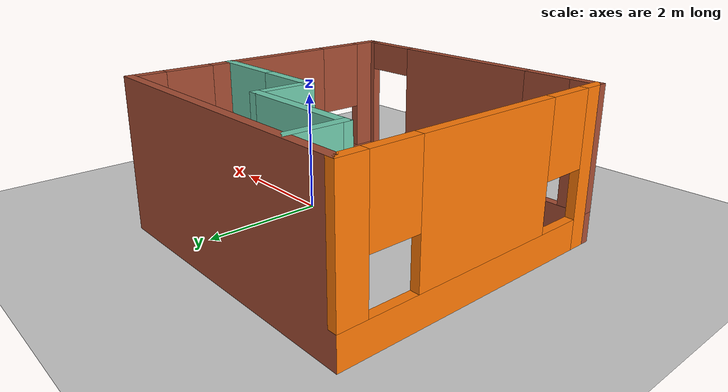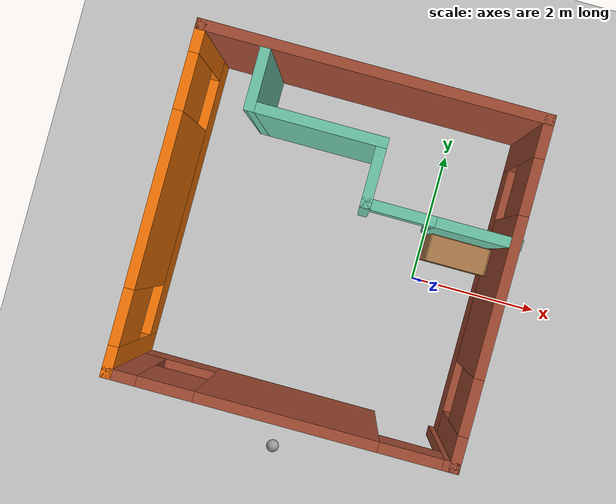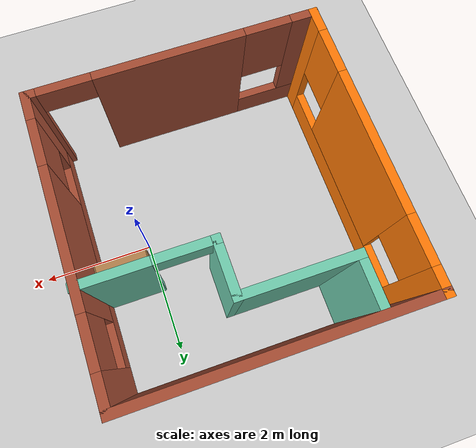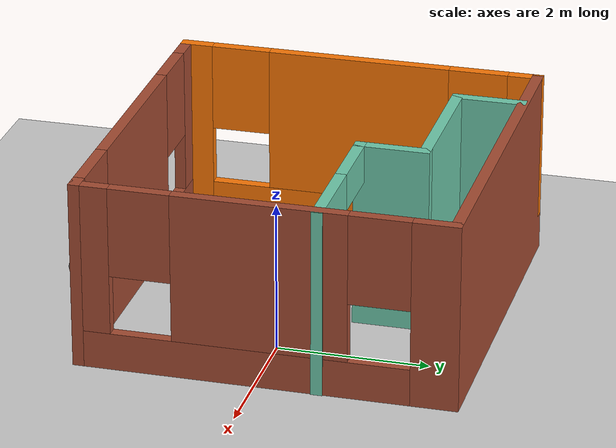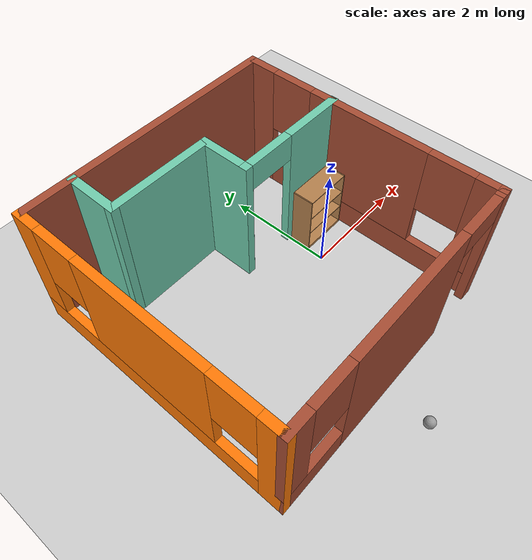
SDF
<sdf version="1.6">
 <world name="default">
  <light name="sun" type="directional">
   <pose>0 0 10 0 -0 0</pose>
   <diffuse>0.8 0.8 0.8 1</diffuse>
   <specular>0.2 0.2 0.2 1</specular>
   <attenuation>
    <range>1000</range>
    <constant>0.9</constant>
    <linear>0.01</linear>
    <quadratic>0.001</quadratic>
   </attenuation>
   <direction>-0.5 0.1 -0.9</direction>
  </light>
  <model name="ground_plane">
   <static>1</static>
   <link name="link">
    <collision name="collision">
     <geometry><plane><normal>0 0 1</normal><size>100 100</size></plane></geometry>
     <surface><friction><ode><mu>100</mu><mu2>50</mu2></ode></friction></surface>
    </collision>
    <visual name="visual">
     <cast_shadows>0</cast_shadows>
     <geometry><plane><normal>0 0 1</normal><size>100 100</size></plane></geometry>
     <material>
      <script><uri>file://media/materials/scripts/gazebo.material</uri><name>Gazebo/Grey</name></script>
     </material>
    </visual>
   </link>
  </model>
  <gravity>0 0 -9.8</gravity>
  <magnetic_field>6e-06 2.3e-05 -4.2e-05</magnetic_field>
  <atmosphere type="adiabatic"/>
  <physics name="default_physics" default="0" type="ode">
   <max_step_size>0.001</max_step_size>
   <real_time_factor>1</real_time_factor>
   <real_time_update_rate>1000</real_time_update_rate>
  </physics>
  <scene><ambient>0.4 0.4 0.4 1</ambient><background>0.7 0.7 0.7 1</background><shadows>1</shadows></scene>
  <spherical_coordinates>
   <surface_model>EARTH_WGS84</surface_model>
   <latitude_deg>0</latitude_deg>
   <longitude_deg>0</longitude_deg>
   <elevation>0</elevation>
   <heading_deg>0</heading_deg>
  </spherical_coordinates>
  <model name="smallBuilding">
   <pose>-1.37712 0.125 0 0 -0 0</pose>
   <link name="Wall_0">
    <pose>-2.43288 0 0 0 -0 1.5708</pose>
    <visual name="Wall_0_Visual_0">
     <pose>-2.27603 0 1.25 0 -0 0</pose>
     <geometry><box><size>0.447946 0.15 2.5</size></box></geometry>
     <material>
      <script><uri>file://media/materials/scripts/gazebo.material</uri><name>Gazebo/Grey</name></script>
      <ambient>0.996078 0.47451 0.0196078 1</ambient>
     </material>
     <meta><layer>0</layer></meta>
    </visual>
    <collision name="Wall_0_Collision_0">
     <geometry><box><size>0.447946 0.15 2.5</size></box></geometry>
     <pose>-2.27603 0 1.25 0 -0 0</pose>
    </collision>
    <visual name="Wall_0_Visual_1">
     <pose>0.223973 0 0.25 0 -0 0</pose>
     <geometry><box><size>4.55205 0.15 0.5</size></box></geometry>
     <material>
      <script><uri>file://media/materials/scripts/gazebo.material</uri><name>Gazebo/Grey</name></script>
      <ambient>0.996078 0.47451 0.0196078 1</ambient>
     </material>
     <meta><layer>0</layer></meta>
    </visual>
    <collision name="Wall_0_Collision_1">
     <geometry><box><size>4.55205 0.15 0.5</size></box></geometry>
     <pose>0.223973 0 0.25 0 -0 0</pose>
    </collision>
    <visual name="Wall_0_Visual_2">
     <pose>-0.009509 0 1.5 0 -0 0</pose>
     <geometry><box><size>2.48509 0.15 2</size></box></geometry>
     <material>
      <script><uri>file://media/materials/scripts/gazebo.material</uri><name>Gazebo/Grey</name></script>
      <ambient>0.996078 0.47451 0.0196078 1</ambient>
     </material>
     <meta><layer>0</layer></meta>
    </visual>
    <collision name="Wall_0_Collision_2">
     <geometry><box><size>2.48509 0.15 2</size></box></geometry>
     <pose>-0.009509 0 1.5 0 -0 0</pose>
    </collision>
    <visual name="Wall_0_Visual_3">
     <pose>2.26652 0 1.5 0 -0 0</pose>
     <geometry><box><size>0.466964 0.15 2</size></box></geometry>
     <material>
      <script><uri>file://media/materials/scripts/gazebo.material</uri><name>Gazebo/Grey</name></script>
      <ambient>0.996078 0.47451 0.0196078 1</ambient>
     </material>
     <meta><layer>0</layer></meta>
    </visual>
    <collision name="Wall_0_Collision_3">
     <geometry><box><size>0.466964 0.15 2</size></box></geometry>
     <pose>2.26652 0 1.5 0 -0 0</pose>
    </collision>
    <visual name="Wall_0_Visual_4">
     <pose>-1.65205 0 1.9 0 -0 0</pose>
     <geometry><box><size>0.8 0.15 1.2</size></box></geometry>
     <material>
      <script><uri>file://media/materials/scripts/gazebo.material</uri><name>Gazebo/Grey</name></script>
      <ambient>0.996078 0.47451 0.0196078 1</ambient>
     </material>
     <meta><layer>0</layer></meta>
    </visual>
    <collision name="Wall_0_Collision_4">
     <geometry><box><size>0.8 0.15 1.2</size></box></geometry>
     <pose>-1.65205 0 1.9 0 -0 0</pose>
    </collision>
    <visual name="Wall_0_Visual_5">
     <pose>1.63304 0 1.9 0 -0 0</pose>
     <geometry><box><size>0.8 0.15 1.2</size></box></geometry>
     <material>
      <script><uri>file://media/materials/scripts/gazebo.material</uri><name>Gazebo/Grey</name></script>
      <ambient>0.996078 0.47451 0.0196078 1</ambient>
     </material>
     <meta><layer>0</layer></meta>
    </visual>
    <collision name="Wall_0_Collision_5">
     <geometry><box><size>0.8 0.15 1.2</size></box></geometry>
     <pose>1.63304 0 1.9 0 -0 0</pose>
    </collision>
   </link>
   <link name="Wall_1">
    <collision name="Wall_1_Collision">
     <geometry><box><size>5 0.15 2.5</size></box></geometry>
     <pose>0 0 1.25 0 -0 0</pose>
    </collision>
    <visual name="Wall_1_Visual">
     <pose>0 0 1.25 0 -0 0</pose>
     <geometry><box><size>5 0.15 2.5</size></box></geometry>
     <material>
      <script><uri>file://media/materials/scripts/gazebo.material</uri><name>Gazebo/Bricks</name></script>
      <ambient>0.996078 0.47451 0.0196078 1</ambient>
     </material>
     <meta><layer>0</layer></meta>
    </visual>
    <pose>-0.007876 2.425 0 0 -0 0</pose>
   </link>
   <link name="Wall_2">
    <pose>2.41712 0 0 0 0 -1.5708</pose>
    <visual name="Wall_2_Visual_0">
     <pose>-2.19047 0 1.25 0 -0 0</pose>
     <geometry><box><size>0.619051 0.15 2.5</size></box></geometry>
     <material>
      <script><uri>file://media/materials/scripts/gazebo.material</uri><name>Gazebo/Bricks</name></script>
      <ambient>0.996078 0.47451 0.0196078 1</ambient>
     </material>
     <meta><layer>0</layer></meta>
    </visual>
    <collision name="Wall_2_Collision_0">
     <geometry><box><size>0.619051 0.15 2.5</size></box></geometry>
     <pose>-2.19047 0 1.25 0 -0 0</pose>
    </collision>
    <visual name="Wall_2_Visual_1">
     <pose>0.309526 0 0.25 0 -0 0</pose>
     <geometry><box><size>4.38095 0.15 0.5</size></box></geometry>
     <material>
      <script><uri>file://media/materials/scripts/gazebo.material</uri><name>Gazebo/Bricks</name></script>
      <ambient>0.996078 0.47451 0.0196078 1</ambient>
     </material>
     <meta><layer>0</layer></meta>
    </visual>
    <collision name="Wall_2_Collision_1">
     <geometry><box><size>4.38095 0.15 0.5</size></box></geometry>
     <pose>0.309526 0 0.25 0 -0 0</pose>
    </collision>
    <visual name="Wall_2_Visual_2">
     <pose>0.055135 0 1.5 0 -0 0</pose>
     <geometry><box><size>2.27217 0.15 2</size></box></geometry>
     <material>
      <script><uri>file://media/materials/scripts/gazebo.material</uri><name>Gazebo/Bricks</name></script>
      <ambient>0.996078 0.47451 0.0196078 1</ambient>
     </material>
     <meta><layer>0</layer></meta>
    </visual>
    <collision name="Wall_2_Collision_2">
     <geometry><box><size>2.27217 0.15 2</size></box></geometry>
     <pose>0.055135 0 1.5 0 -0 0</pose>
    </collision>
    <visual name="Wall_2_Visual_3">
     <pose>2.24561 0 1.5 0 -0 0</pose>
     <geometry><box><size>0.508781 0.15 2</size></box></geometry>
     <material>
      <script><uri>file://media/materials/scripts/gazebo.material</uri><name>Gazebo/Bricks</name></script>
      <ambient>0.996078 0.47451 0.0196078 1</ambient>
     </material>
     <meta><layer>0</layer></meta>
    </visual>
    <collision name="Wall_2_Collision_3">
     <geometry><box><size>0.508781 0.15 2</size></box></geometry>
     <pose>2.24561 0 1.5 0 -0 0</pose>
    </collision>
    <visual name="Wall_2_Visual_4">
     <pose>-1.48095 0 1.9 0 -0 0</pose>
     <geometry><box><size>0.8 0.15 1.2</size></box></geometry>
     <material>
      <script><uri>file://media/materials/scripts/gazebo.material</uri><name>Gazebo/Bricks</name></script>
      <ambient>0.996078 0.47451 0.0196078 1</ambient>
     </material>
     <meta><layer>0</layer></meta>
    </visual>
    <collision name="Wall_2_Collision_4">
     <geometry><box><size>0.8 0.15 1.2</size></box></geometry>
     <pose>-1.48095 0 1.9 0 -0 0</pose>
    </collision>
    <visual name="Wall_2_Visual_5">
     <pose>1.59122 0 1.9 0 -0 0</pose>
     <geometry><box><size>0.8 0.15 1.2</size></box></geometry>
     <material>
      <script><uri>file://media/materials/scripts/gazebo.material</uri><name>Gazebo/Bricks</name></script>
      <ambient>0.996078 0.47451 0.0196078 1</ambient>
     </material>
     <meta><layer>0</layer></meta>
    </visual>
    <collision name="Wall_2_Collision_5">
     <geometry><box><size>0.8 0.15 1.2</size></box></geometry>
     <pose>1.59122 0 1.9 0 -0 0</pose>
    </collision>
   </link>
   <link name="Wall_3">
    <pose>-0.007876 -2.425 0 0 -0 3.14159</pose>
    <visual name="Wall_3_Visual_0">
     <pose>-2.37989 0 1.25 0 -0 0</pose>
     <geometry><box><size>0.240218 0.15 2.5</size></box></geometry>
     <material>
      <script><uri>file://media/materials/scripts/gazebo.material</uri><name>Gazebo/Bricks</name></script>
      <ambient>0.996078 0.47451 0.0196078 1</ambient>
     </material>
     <meta><layer>0</layer></meta>
    </visual>
    <collision name="Wall_3_Collision_0">
     <geometry><box><size>0.240218 0.15 2.5</size></box></geometry>
     <pose>-2.37989 0 1.25 0 -0 0</pose>
    </collision>
    <visual name="Wall_3_Visual_1">
     <pose>-0.073797 0 1.25 0 -0 0</pose>
     <geometry><box><size>2.57197 0.15 2.5</size></box></geometry>
     <material>
      <script><uri>file://media/materials/scripts/gazebo.material</uri><name>Gazebo/Bricks</name></script>
      <ambient>0.996078 0.47451 0.0196078 1</ambient>
     </material>
     <meta><layer>0</layer></meta>
    </visual>
    <collision name="Wall_3_Collision_1">
     <geometry><box><size>2.57197 0.15 2.5</size></box></geometry>
     <pose>-0.073797 0 1.25 0 -0 0</pose>
    </collision>
    <visual name="Wall_3_Visual_2">
     <pose>1.85609 0 0.25 0 -0 0</pose>
     <geometry><box><size>1.28781 0.15 0.5</size></box></geometry>
     <material>
      <script><uri>file://media/materials/scripts/gazebo.material</uri><name>Gazebo/Bricks</name></script>
      <ambient>0.996078 0.47451 0.0196078 1</ambient>
     </material>
     <meta><layer>0</layer></meta>
    </visual>
    <collision name="Wall_3_Collision_2">
     <geometry><box><size>1.28781 0.15 0.5</size></box></geometry>
     <pose>1.85609 0 0.25 0 -0 0</pose>
    </collision>
    <visual name="Wall_3_Visual_3">
     <pose>2.25609 0 1.5 0 -0 0</pose>
     <geometry><box><size>0.487813 0.15 2</size></box></geometry>
     <material>
      <script><uri>file://media/materials/scripts/gazebo.material</uri><name>Gazebo/Bricks</name></script>
      <ambient>0.996078 0.47451 0.0196078 1</ambient>
     </material>
     <meta><layer>0</layer></meta>
    </visual>
    <collision name="Wall_3_Collision_3">
     <geometry><box><size>0.487813 0.15 2</size></box></geometry>
     <pose>2.25609 0 1.5 0 -0 0</pose>
    </collision>
    <visual name="Wall_3_Visual_4">
     <pose>1.61219 0 1.9 0 -0 0</pose>
     <geometry><box><size>0.8 0.15 1.2</size></box></geometry>
     <material>
      <script><uri>file://media/materials/scripts/gazebo.material</uri><name>Gazebo/Bricks</name></script>
      <ambient>0.996078 0.47451 0.0196078 1</ambient>
     </material>
     <meta><layer>0</layer></meta>
    </visual>
    <collision name="Wall_3_Collision_4">
     <geometry><box><size>0.8 0.15 1.2</size></box></geometry>
     <pose>1.61219 0 1.9 0 -0 0</pose>
    </collision>
    <visual name="Wall_3_Visual_5">
     <pose>-1.80978 0 2.25 0 -0 0</pose>
     <geometry><box><size>0.9 0.15 0.5</size></box></geometry>
     <material>
      <script><uri>file://media/materials/scripts/gazebo.material</uri><name>Gazebo/Bricks</name></script>
      <ambient>0.996078 0.47451 0.0196078 1</ambient>
     </material>
     <meta><layer>0</layer></meta>
    </visual>
    <collision name="Wall_3_Collision_5">
     <geometry><box><size>0.9 0.15 0.5</size></box></geometry>
     <pose>-1.80978 0 2.25 0 -0 0</pose>
    </collision>
   </link>
   <link name="Wall_6">
    <collision name="Wall_6_Collision">
     <geometry><box><size>1 0.15 2.5</size></box></geometry>
     <pose>0 0 1.25 0 -0 0</pose>
    </collision>
    <visual name="Wall_6_Visual">
     <pose>0 0 1.25 0 -0 0</pose>
     <geometry><box><size>1 0.15 2.5</size></box></geometry>
     <material>
      <script><uri>file://media/materials/scripts/gazebo.material</uri><name>Gazebo/Grey</name></script>
      <ambient>0.435294 0.796078 0.67451 1</ambient>
     </material>
     <meta><layer>0</layer></meta>
    </visual>
    <pose>-1.51712 1.96738 0 0 0 -1.5708</pose>
   </link>
   <link name="Wall_7">
    <collision name="Wall_7_Collision">
     <geometry><box><size>2 0.15 2.5</size></box></geometry>
     <pose>0 0 1.25 0 -0 0</pose>
    </collision>
    <visual name="Wall_7_Visual">
     <pose>0 0 1.25 0 -0 0</pose>
     <geometry><box><size>2 0.15 2.5</size></box></geometry>
     <material>
      <script><uri>file://media/materials/scripts/gazebo.material</uri><name>Gazebo/Grey</name></script>
      <ambient>0.435294 0.796078 0.67451 1</ambient>
     </material>
     <meta><layer>0</layer></meta>
    </visual>
    <pose>-0.592124 1.54238 0 0 -0 0</pose>
   </link>
   <link name="Wall_8">
    <collision name="Wall_8_Collision">
     <geometry><box><size>1 0.15 2.5</size></box></geometry>
     <pose>0 0 1.25 0 -0 0</pose>
    </collision>
    <visual name="Wall_8_Visual">
     <pose>0 0 1.25 0 -0 0</pose>
     <geometry><box><size>1 0.15 2.5</size></box></geometry>
     <material>
      <script><uri>file://media/materials/scripts/gazebo.material</uri><name>Gazebo/Grey</name></script>
      <ambient>0.435294 0.796078 0.67451 1</ambient>
     </material>
     <meta><layer>0</layer></meta>
    </visual>
    <pose>0.332876 1.11739 0 0 0 -1.5708</pose>
   </link>
   <link name="Wall_9">
    <pose>1.38288 0.692385 0 0 -0 0</pose>
    <visual name="Wall_9_Visual_0">
     <pose>-1.05054 0 1.25 0 -0 0</pose>
     <geometry><box><size>0.148913 0.15 2.5</size></box></geometry>
     <material>
      <script><uri>file://media/materials/scripts/gazebo.material</uri><name>Gazebo/Grey</name></script>
      <ambient>0.435294 0.796078 0.67451 1</ambient>
     </material>
     <meta><layer>0</layer></meta>
    </visual>
    <collision name="Wall_9_Collision_0">
     <geometry><box><size>0.148913 0.15 2.5</size></box></geometry>
     <pose>-1.05054 0 1.25 0 -0 0</pose>
    </collision>
    <visual name="Wall_9_Visual_1">
     <pose>0.524457 0 1.25 0 -0 0</pose>
     <geometry><box><size>1.20109 0.15 2.5</size></box></geometry>
     <material>
      <script><uri>file://media/materials/scripts/gazebo.material</uri><name>Gazebo/Grey</name></script>
      <ambient>0.435294 0.796078 0.67451 1</ambient>
     </material>
     <meta><layer>0</layer></meta>
    </visual>
    <collision name="Wall_9_Collision_1">
     <geometry><box><size>1.20109 0.15 2.5</size></box></geometry>
     <pose>0.524457 0 1.25 0 -0 0</pose>
    </collision>
    <visual name="Wall_9_Visual_2">
     <pose>-0.526087 0 2.25 0 -0 0</pose>
     <geometry><box><size>0.9 0.15 0.5</size></box></geometry>
     <material>
      <script><uri>file://media/materials/scripts/gazebo.material</uri><name>Gazebo/Grey</name></script>
      <ambient>0.435294 0.796078 0.67451 1</ambient>
     </material>
     <meta><layer>0</layer></meta>
    </visual>
    <collision name="Wall_9_Collision_2">
     <geometry><box><size>0.9 0.15 0.5</size></box></geometry>
     <pose>-0.526087 0 2.25 0 -0 0</pose>
    </collision>
   </link>
   <static>1</static>
  </model>
  <model name="bookshelf">
   <static>1</static>
   <link name="link">
    <inertial><mass>1</mass></inertial>
    <collision name="back">
     <pose>0 0.005 0.6 0 -0 0</pose>
     <geometry><box><size>0.9 0.01 1.2</size></box></geometry>
    </collision>
    <visual name="visual1">
     <pose>0 0.005 0.6 0 -0 0</pose>
     <geometry><box><size>0.9 0.01 1.2</size></box></geometry>
     <material>
      <script><uri>file://media/materials/scripts/gazebo.material</uri><name>Gazebo/Wood</name></script>
     </material>
    </visual>
    <collision name="left_side">
     <pose>0.45 -0.195 0.6 0 -0 0</pose>
     <geometry><box><size>0.02 0.4 1.2</size></box></geometry>
    </collision>
    <visual name="visual2">
     <pose>0.45 -0.195 0.6 0 -0 0</pose>
     <geometry><box><size>0.02 0.4 1.2</size></box></geometry>
     <material>
      <script><uri>file://media/materials/scripts/gazebo.material</uri><name>Gazebo/Wood</name></script>
     </material>
    </visual>
    <collision name="right_side">
     <pose>-0.45 -0.195 0.6 0 -0 0</pose>
     <geometry><box><size>0.02 0.4 1.2</size></box></geometry>
    </collision>
    <visual name="visual3">
     <pose>-0.45 -0.195 0.6 0 -0 0</pose>
     <geometry><box><size>0.02 0.4 1.2</size></box></geometry>
     <material>
      <script><uri>file://media/materials/scripts/gazebo.material</uri><name>Gazebo/Wood</name></script>
     </material>
    </visual>
    <collision name="bottom">
     <pose>0 -0.195 0.03 0 -0 0</pose>
     <geometry><box><size>0.88 0.4 0.06</size></box></geometry>
    </collision>
    <visual name="visual4">
     <pose>0 -0.195 0.03 0 -0 0</pose>
     <geometry><box><size>0.88 0.4 0.06</size></box></geometry>
     <material>
      <script><uri>file://media/materials/scripts/gazebo.material</uri><name>Gazebo/Wood</name></script>
     </material>
    </visual>
    <collision name="top">
     <pose>0 -0.195 1.19 0 -0 0</pose>
     <geometry><box><size>0.88 0.4 0.02</size></box></geometry>
    </collision>
    <visual name="visual5">
     <pose>0 -0.195 1.19 0 -0 0</pose>
     <geometry><box><size>0.88 0.4 0.02</size></box></geometry>
     <material>
      <script><uri>file://media/materials/scripts/gazebo.material</uri><name>Gazebo/Wood</name></script>
     </material>
    </visual>
    <collision name="low_shelf">
     <pose>0 -0.195 0.43 0 -0 0</pose>
     <geometry><box><size>0.88 0.4 0.02</size></box></geometry>
    </collision>
    <visual name="visual6">
     <pose>0 -0.195 0.43 0 -0 0</pose>
     <geometry><box><size>0.88 0.4 0.02</size></box></geometry>
     <material>
      <script><uri>file://media/materials/scripts/gazebo.material</uri><name>Gazebo/Wood</name></script>
     </material>
    </visual>
    <collision name="high_shelf">
     <pose>0 -0.195 0.8 0 -0 0</pose>
     <geometry><box><size>0.88 0.4 0.02</size></box></geometry>
    </collision>
    <visual name="visual7">
     <pose>0 -0.195 0.8 0 -0 0</pose>
     <geometry><box><size>0.88 0.4 0.02</size></box></geometry>
     <material>
      <script><uri>file://media/materials/scripts/gazebo.material</uri><name>Gazebo/Wood</name></script>
     </material>
    </visual>
   </link>
   <pose>0.471865 0.706167 0 0 -0 0</pose>
  </model>
  <model name="my_ball">
   <link name="link_0">
    <inertial>
     <mass>1</mass>
     <inertia><ixx>0.1</ixx><ixy>0</ixy><ixz>0</ixz><iyy>0.1</iyy><iyz>0</iyz><izz>0.1</izz></inertia>
    </inertial>
    <visual name="visual">
     <geometry><sphere><radius>0.1</radius></sphere></geometry>
     <material>
      <lighting>1</lighting>
      <script><uri>file://media/materials/scripts/gazebo.material</uri><name>Gazebo/Grey</name></script>
      <shader type="pixel"><normal_map>__default__</normal_map></shader>
      <ambient>1 1 1 1</ambient>
      <diffuse>1 1 1 1</diffuse>
      <specular>1 1 1 1</specular>
      <emissive>1 1 1 1</emissive>
     </material>
    </visual>
    <collision name="collision">
     <geometry><sphere><radius>0.1</radius></sphere></geometry>
     <surface>
      <friction>
       <ode><mu>1</mu><mu2>1</mu2><fdir1>0 0 0</fdir1><slip1>0</slip1><slip2>0</slip2></ode>
       <torsional>
        <coefficient>1</coefficient>
        <patch_radius>0</patch_radius>
        <surface_radius>0</surface_radius>
        <use_patch_radius>1</use_patch_radius>
        <ode><slip>0</slip></ode>
       </torsional>
      </friction>
      <bounce><restitution_coefficient>0</restitution_coefficient><threshold>1e+06</threshold></bounce>
      <contact>
       <collide_without_contact>0</collide_without_contact>
       <collide_without_contact_bitmask>1</collide_without_contact_bitmask>
       <collide_bitmask>1</collide_bitmask>
       <ode>
        <soft_cfm>0</soft_cfm>
        <soft_erp>0.2</soft_erp>
        <kp>1e+13</kp>
        <kd>1</kd>
        <max_vel>0.01</max_vel>
        <min_depth>0</min_depth>
       </ode>
       <bullet>
        <split_impulse>1</split_impulse>
        <split_impulse_penetration_threshold>-0.01</split_impulse_penetration_threshold>
        <soft_cfm>0</soft_cfm>
        <soft_erp>0.2</soft_erp>
        <kp>1e+13</kp>
        <kd>1</kd>
       </bullet>
      </contact>
     </surface>
    </collision>
   </link>
   <static>0</static>
   <pose>-1.45661 -3.17689 0.1 0 -0 0</pose>
  </model>
 </world>
</sdf>
